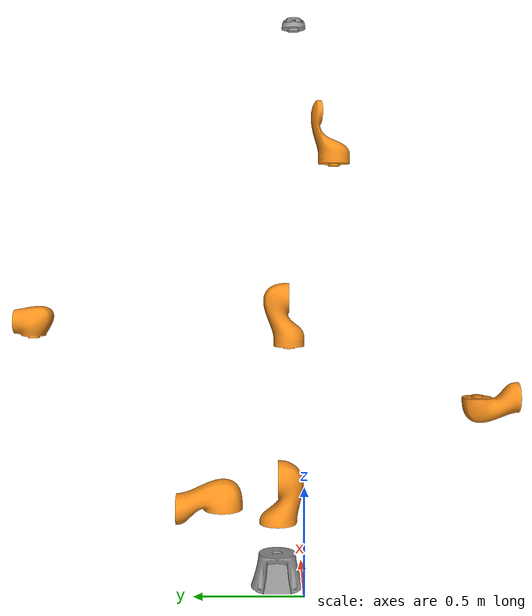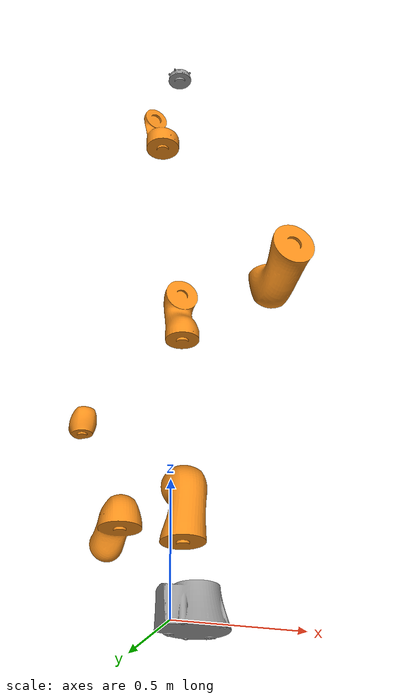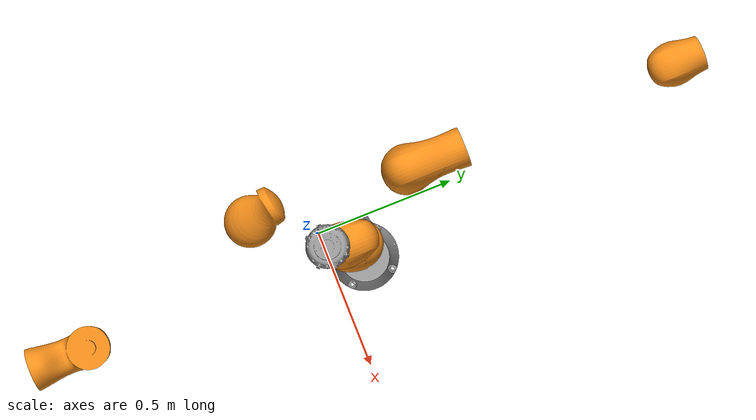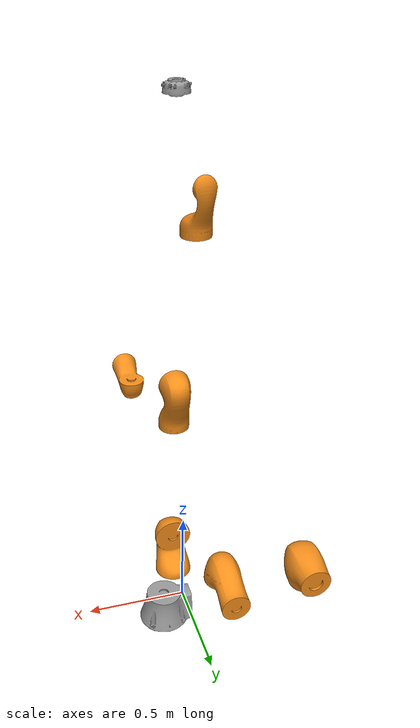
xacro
<?xml version="1.0"?>
<robot name="iiwa_setup" xmlns:xacro="http://www.ros.org/wiki/xacro">
   <!-- Import Rviz colors -->
   <xacro:include filename="$(find lbr_iiwa_description)/urdf/materials.xacro" />
   <!--Import the lbr iiwa macro -->
   <xacro:include filename="$(find lbr_iiwa_description)/urdf/lbr_iiwa.xacro"/>
   <!-- Import Gazebo plugins -->
   <xacro:include filename="$(find lbr_iiwa_description)/gazebo/gazebo.urdf.xacro"/>
   <!-- Include Utilities -->
   <xacro:include filename="$(find lbr_iiwa_description)/urdf/utilities.xacro" />

   <!-- Fix robot to world-->
   <link name="world"/>

   <!--lbr -->
   <xacro:lbr_iiwa name="lbr_iiwa" hardware_interface="" parent="world">
    <origin xyz="0 0 0.0" rpy="0 0 0" />
   </xacro:lbr_iiwa>

    <xacro:property name="x_w" value="0"/>
	<xacro:property name="y_w" value="0"/>
	<xacro:property name="z_w" value="0"/>
	<xacro:property name="roll_w" value="0.0"/>
	<xacro:property name="pitch_w" value="0.0"/>
	<xacro:property name="yaw_w" value="0.0"/>

	<!-- combined scene -->
	<link name="tool_frame"/>

	<joint name="tool_frame_joint" type="fixed">
		<origin xyz="${x_w} ${y_w} ${z_w}" rpy="${roll_w} ${pitch_w} ${yaw_w}"/>
		<parent link="lbr_iiwa_link_7"/>
		<child link="tool_frame"/>
	</joint>

</robot>

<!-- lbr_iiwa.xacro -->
<robot name="lbr_iiwa" xmlns:xacro="http://www.ros.org/wiki/xacro">

  <!-- Import all Gazebo-customization elements, including Gazebo colors -->
  <xacro:include filename="$(find lbr_iiwa_description)/urdf/lbr_iiwa.gazebo.xacro" />
  <!-- Import Transmissions -->
  <xacro:include filename="$(find lbr_iiwa_description)/urdf/lbr_iiwa.transmission.xacro" />
  <!-- Include Utilities -->
  <xacro:include filename="$(find lbr_iiwa_description)/urdf/utilities.xacro" />

  <!-- some constants -->
  <xacro:property name="safety_controller_k_pos" value="100" />
  <xacro:property name="safety_controller_k_vel" value="2" />
  <xacro:property name="joint_damping" value="0.5" />
  <xacro:property name="max_effort" value="300"/>
  <xacro:property name="max_velocity" value="10"/>
  <xacro:property name="M_PI" value="3.14159265359"/>

  <xacro:macro name="lbr_iiwa" params="parent name hardware_interface *origin">

    <!--joint between {parent} and link_0-->
    <joint name="${parent}_joint" type="fixed">
      <insert_block name="origin"/>
      <parent link="${parent}"/>
      <child link="${name}_link_0"/>
    </joint>

    <link name="${name}_link_0">
      <inertial>
        <origin xyz="-0.1 0 0.07" rpy="0 0 0"/>
        <mass value="5"/>
        <inertia ixx="0.05"  ixy="0"  ixz="0" iyy="0.06" iyz="0" izz="0.03" />
      </inertial>

      <visual>
        <origin xyz="0 0 0" rpy="0 0 0"/>
        <geometry>
          <mesh filename="package://lbr_iiwa_description/meshes/link_0.stl"/>
        </geometry>
        <material name="Grey"/>
      </visual>

      <collision>
        <origin xyz="0 0 0" rpy="0 0 0"/>
        <geometry>
          <mesh filename="package://lbr_iiwa_description/meshes/coarse/link_0.stl"/>
        </geometry>
        <material name="Grey"/>
      </collision>

      <self_collision_checking>
        <origin xyz="0 0 0" rpy="0 0 0"/>
        <geometry>
          <capsule radius="0.15" length="0.25"/>
        </geometry>
      </self_collision_checking>

    </link>

    <!-- joint between link_0 and link_1 -->
    <joint name="${name}_joint_1" type="revolute">
      <parent link="${name}_link_0"/>
      <child link="${name}_link_1"/>
      <origin xyz="0 0 0.1575" rpy="0 0 0"/>
      <axis xyz="0 0 1"/>
      <limit lower="${-170 * PI / 180}" upper="${170 * PI / 180}"
             effort="${max_effort}" velocity="${max_velocity}" />
         <safety_controller soft_lower_limit="${-168 * M_PI / 180}"
           soft_upper_limit="${168 * M_PI / 180}"
           k_position="${safety_controller_k_pos}"
           k_velocity="${safety_controller_k_vel}"/>
      <dynamics damping="${joint_damping}"/>
    </joint>

    <link name="${name}_link_1">
      <inertial>
        <origin xyz="0 -0.03 0.12" rpy="0 0 0"/>
        <mass value="4"/>
        <inertia ixx="0.1"  ixy="0"  ixz="0" iyy="0.09" iyz="0" izz="0.02" />
      </inertial>

      <visual>
        <origin xyz="0 0 0" rpy="0 0 0"/>
        <geometry>
          <mesh filename="package://lbr_iiwa_description/meshes/link_1.stl"/>
        </geometry>
        <material name="Orange"/>
      </visual>

      <collision>
        <origin xyz="0 0 0" rpy="0 0 0"/>
        <geometry>
          <mesh filename="package://lbr_iiwa_description/meshes/coarse/link_1.stl"/>
        </geometry>
        <material name="Orange"/>
      </collision>
    </link>

    <!-- joint between link_1 and link_2 -->
    <joint name="${name}_joint_2" type="revolute">
      <parent link="${name}_link_1"/>
      <child link="${name}_link_2"/>
      <origin xyz="0 0 0.2025" rpy="${PI / 2}   0 ${PI}"/>
      <axis xyz="0 0 1"/>
      <limit lower="${-120 * PI / 180}" upper="${120 * PI / 180}"
             effort="${max_effort}" velocity="${max_velocity}" />
       <safety_controller soft_lower_limit="${-118 * PI / 180}"
           soft_upper_limit="${118 * PI / 180}"
           k_position="${safety_controller_k_pos}"
           k_velocity="${safety_controller_k_vel}"/>
      <dynamics damping="${joint_damping}"/>
    </joint>

    <link name="${name}_link_2">
      <inertial>
        <origin xyz="0.0003 0.059 0.042" rpy="0 0 0"/>
        <mass value="4"/>
        <inertia ixx="0.05"  ixy="0"  ixz="0" iyy="0.018" iyz="0" izz="0.044" />
      </inertial>

      <visual>
        <origin xyz="0 0 0" rpy="0 0 0"/>
        <geometry>
          <mesh filename="package://lbr_iiwa_description/meshes/link_2.stl"/>
        </geometry>
        <material name="Orange"/>
      </visual>

      <collision>
        <origin xyz="0 0 0" rpy="0 0 0"/>
        <geometry>
          <mesh filename="package://lbr_iiwa_description/meshes/coarse/link_2.stl"/>
        </geometry>
        <material name="Orange"/>
      </collision>
    </link>

    <!-- joint between link_2 and link_3 -->
    <joint name="${name}_joint_3" type="revolute">
      <parent link="${name}_link_2"/>
      <child link="${name}_link_3"/>
      <origin xyz="0 0.2045 0" rpy="${PI / 2} 0 ${PI}"/>
      <axis xyz="0 0 1"/>
      <limit lower="${-170 * PI / 180}" upper="${170 * PI / 180}"
             effort="${max_effort}" velocity="${max_velocity}" />
       <safety_controller soft_lower_limit="${-118 * PI / 180}"
           soft_upper_limit="${118 * PI / 180}"
           k_position="${safety_controller_k_pos}"
           k_velocity="${safety_controller_k_vel}"/>
      <dynamics damping="${joint_damping}"/>
    </joint>

    <link name="${name}_link_3">
      <inertial>
        <origin xyz="0 0.03 0.13" rpy="0 0 0"/>
        <mass value="3"/>
        <inertia ixx="0.08"  ixy="0"  ixz="0" iyy="0.075" iyz="0" izz="0.01" />
      </inertial>

      <visual>
        <origin xyz="0 0 0" rpy="0 0 0"/>
        <geometry>
          <mesh filename="package://lbr_iiwa_description/meshes/link_3.stl"/>
        </geometry>
        <material name="Orange"/>
      </visual>

      <collision>
        <origin xyz="0 0 0" rpy="0 0 0"/>
        <geometry>
          <mesh filename="package://lbr_iiwa_description/meshes/coarse/link_3.stl"/>
        </geometry>
        <material name="Orange"/>
      </collision>
    </link>

   <!-- joint between link_3 and link_4 -->
    <joint name="${name}_joint_4" type="revolute">
      <parent link="${name}_link_3"/>
      <child link="${name}_link_4"/>
      <origin xyz="0 0 0.2155" rpy="${PI / 2} 0 0"/>
      <axis xyz="0 0 1"/>
      <limit lower="${-120 * PI / 180}" upper="${120 * PI / 180}"
             effort="${max_effort}" velocity="${max_velocity}" />
       <safety_controller soft_lower_limit="${-118 * PI / 180}"
           soft_upper_limit="${118 * PI / 180}"
           k_position="${safety_controller_k_pos}"
           k_velocity="${safety_controller_k_vel}"/>
      <dynamics damping="${joint_damping}"/>
    </joint>

    <link name="${name}_link_4">
      <inertial>
        <origin xyz="0 0.067 0.034" rpy="0 0 0"/>
        <mass value="2.7"/>
        <inertia ixx="0.03"  ixy="0"  ixz="0" iyy="0.01" iyz="0" izz="0.029" />
      </inertial>

      <visual>
        <origin xyz="0 0 0" rpy="0 0 0"/>
        <geometry>
          <mesh filename="package://lbr_iiwa_description/meshes/link_4.stl"/>
        </geometry>
        <material name="Orange"/>
      </visual>

      <collision>
        <origin xyz="0 0 0" rpy="0 0 0"/>
        <geometry>
          <mesh filename="package://lbr_iiwa_description/meshes/coarse/link_4.stl"/>
        </geometry>
        <material name="Orange"/>
      </collision>
    </link>

    <!-- joint between link_4 and link_5 -->
    <joint name="${name}_joint_5" type="revolute">
      <parent link="${name}_link_4"/>
      <child link="${name}_link_5"/>
      <origin xyz="0 0.1845 0" rpy="${-PI / 2} ${PI} 0"/>
      <axis xyz="0 0 1"/>
      <limit lower="${-170 * PI / 180}" upper="${170 * PI / 180}"
             effort="${max_effort}" velocity="${max_velocity}" />
       <safety_controller soft_lower_limit="${-118 * PI / 180}"
           soft_upper_limit="${118 * PI / 180}"
           k_position="${safety_controller_k_pos}"
           k_velocity="${safety_controller_k_vel}"/>
      <dynamics damping="${joint_damping}"/>
    </joint>

    <link name="${name}_link_5">
      <inertial>
        <origin xyz="0.0001 0.021 0.076" rpy="0 0 0"/>
        <mass value="1.7"/>
        <inertia ixx="0.02"  ixy="0"  ixz="0" iyy="0.018" iyz="0" izz="0.005" />
      </inertial>

      <visual>
        <origin xyz="0 0 0" rpy="0 0 0"/>
        <geometry>
          <mesh filename="package://lbr_iiwa_description/meshes/link_5.stl"/>
        </geometry>
        <material name="Orange"/>
      </visual>

      <collision>
        <origin xyz="0 0 0" rpy="0 0 0"/>
        <geometry>
          <mesh filename="package://lbr_iiwa_description/meshes/coarse/link_5.stl"/>
        </geometry>
        <material name="Orange"/>
      </collision>
    </link>

 <!-- joint between link_5 and link_6 -->
    <joint name="${name}_joint_6" type="revolute">
      <parent link="${name}_link_5"/>
      <child link="${name}_link_6"/>
      <origin xyz="0 0 0.2155" rpy="${PI / 2} 0 0"/>
      <axis xyz="0 0 1"/>
      <limit lower="${-120 * PI / 180}" upper="${120 * PI / 180}"
             effort="${max_effort}" velocity="${max_velocity}" />
       <safety_controller soft_lower_limit="${-118 * PI / 180}"
           soft_upper_limit="${118 * PI / 180}"
           k_position="${safety_controller_k_pos}"
           k_velocity="${safety_controller_k_vel}"/>
      <dynamics damping="${joint_damping}"/>
    </joint>

    <link name="${name}_link_6">
      <inertial>
        <origin xyz="0 0.0006 0.0004" rpy="0 0 0"/>
        <mass value="1.8"/>
        <inertia ixx="0.005"  ixy="0"  ixz="0" iyy="0.0036" iyz="0" izz="0.0047" />
      </inertial>

      <visual>
        <origin xyz="0 0 0" rpy="0 0 0"/>
        <geometry>
          <mesh filename="package://lbr_iiwa_description/meshes/link_6.stl"/>
        </geometry>
        <material name="Orange"/>
      </visual>

      <collision>
        <origin xyz="0 0 0" rpy="0 0 0"/>
        <geometry>
          <mesh filename="package://lbr_iiwa_description/meshes/coarse/link_6.stl"/>
        </geometry>
        <material name="Orange"/>
      </collision>
    </link>

 <!-- joint between link_6 and link_7 -->
    <joint name="${name}_joint_7" type="revolute">
      <parent link="${name}_link_6"/>
      <child link="${name}_link_7"/>
      <origin xyz="0 0.081 0" rpy="${- PI / 2} ${PI} 0"/>
      <axis xyz="0 0 1"/>
      <limit lower="${-175 * PI / 180}" upper="${175 * PI / 180}"
             effort="${max_effort}" velocity="${max_velocity}" />
       <safety_controller soft_lower_limit="${-118 * PI / 180}"
           soft_upper_limit="${118 * PI / 180}"
           k_position="${safety_controller_k_pos}"
           k_velocity="${safety_controller_k_vel}"/>
      <dynamics damping="${joint_damping}"/>
    </joint>

    <link name="${name}_link_7">
      <inertial>
        <origin xyz="0 0 0.02" rpy="0 0 0"/>
        <mass value="0.3"/>
        <inertia ixx="0.001"  ixy="0"  ixz="0" iyy="0.001" iyz="0" izz="0.001" />
      </inertial>

      <visual>
        <origin xyz="0 0 0" rpy="0 0 0"/>
        <geometry>
          <mesh filename="package://lbr_iiwa_description/meshes/link_7.stl"/>
        </geometry>
        <material name="Grey"/>
      </visual>

      <collision>
        <origin xyz="0 0 0" rpy="0 0 0"/>
        <geometry>
          <mesh filename="package://lbr_iiwa_description/meshes/coarse/link_7.stl"/>
        </geometry>
        <material name="Grey"/>
      </collision>
    </link>

    <!--Extensions -->
    <xacro:lbr_iiwa_gazebo name="${name}" />
    <xacro:lbr_iiwa_transmission name="${name}" hardware_interface="${hardware_interface}"/>

  </xacro:macro>

</robot>

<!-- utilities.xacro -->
<robot name="lbr_iiwa" xmlns:xacro="http://www.ros.org/wiki/xacro">

  <xacro:property name="PI" value="3.1415926535897931"/>

<!-- The following macros are adapted from the LWR 4 definitions of the RCPRG - https://github.com/RCPRG-ros-pkg/lwr_robot -->
  <!--Little helper macros to define the inertia matrix needed for links.-->
  <!--Cuboid-->
  <xacro:macro name="cuboid_inertia" params="width height length mass">
    <inertia ixx="${mass * (height * height + length * length) / 12)}"
             iyy="${mass * (width * width + length * length) / 12)}"
             izz="${mass * (width * width + height * height) / 12)}"
             ixy="0" iyz="0" ixz="0"/>
  </xacro:macro>

  <!--Cylinder: length is along the y-axis! -->
  <xacro:macro name="cylinder_inertia" params="radius length mass">
    <inertia ixx="${mass * (3 * radius * radius + length * length) / 12)}"
             iyy="${mass * radius* radius / 2)}"
             izz="${mass * (3 * radius * radius + length * length) / 12)}"
             ixy="0" iyz="0" ixz="0"/>
  </xacro:macro>

</robot>
